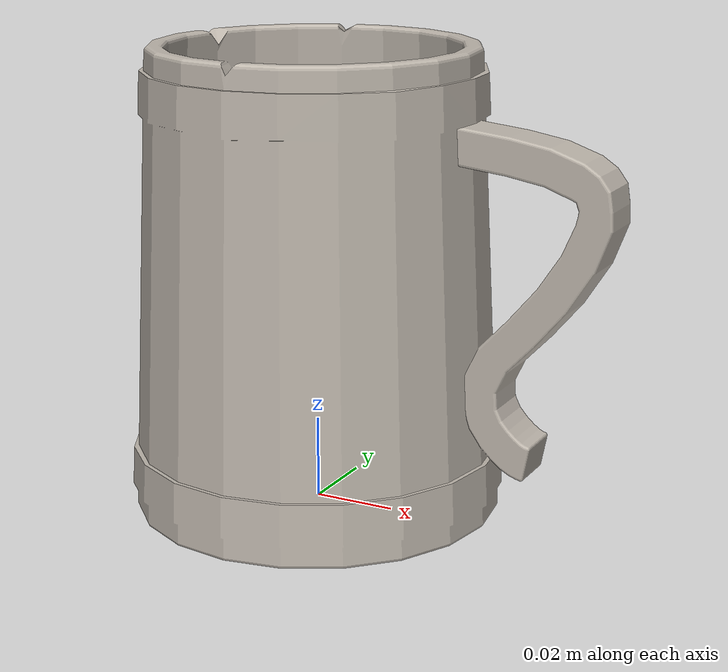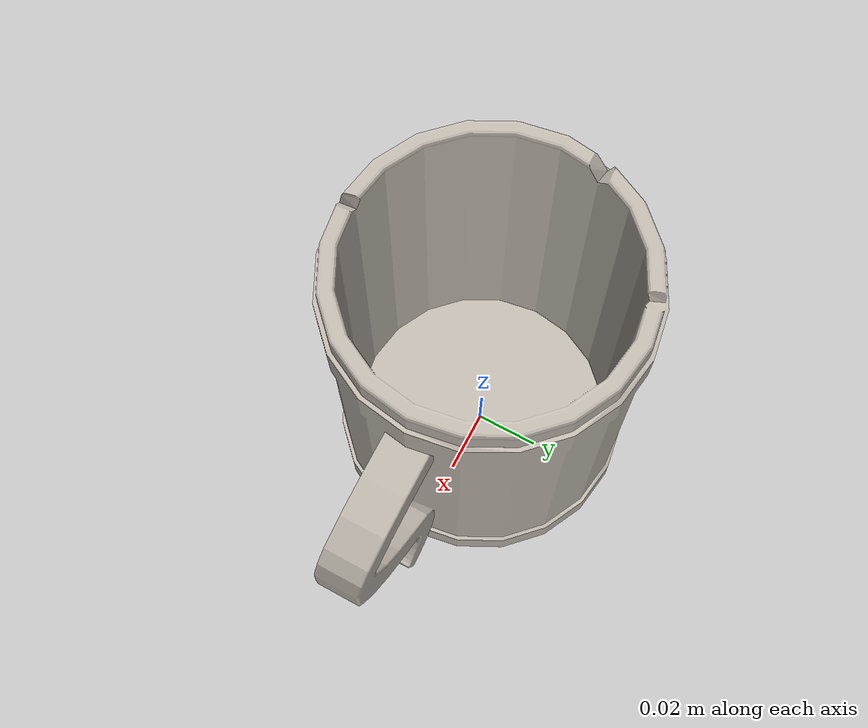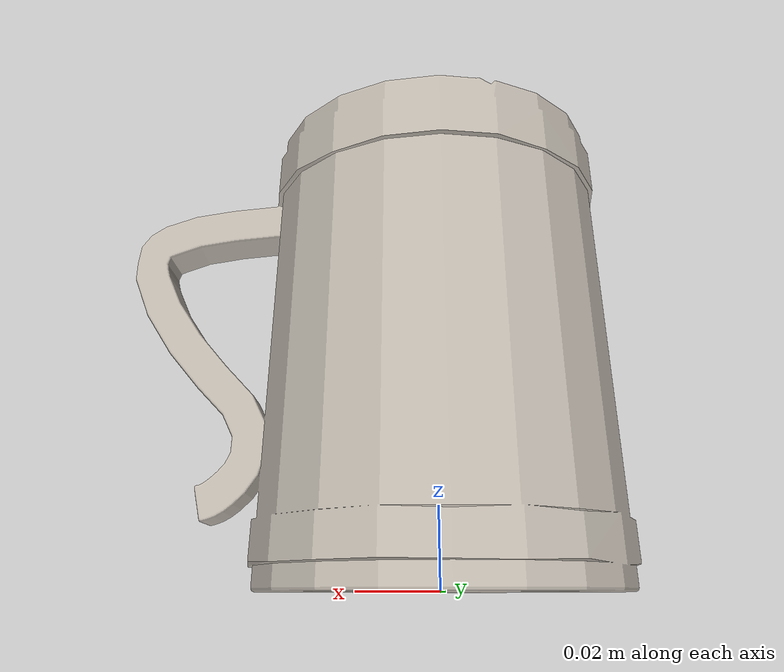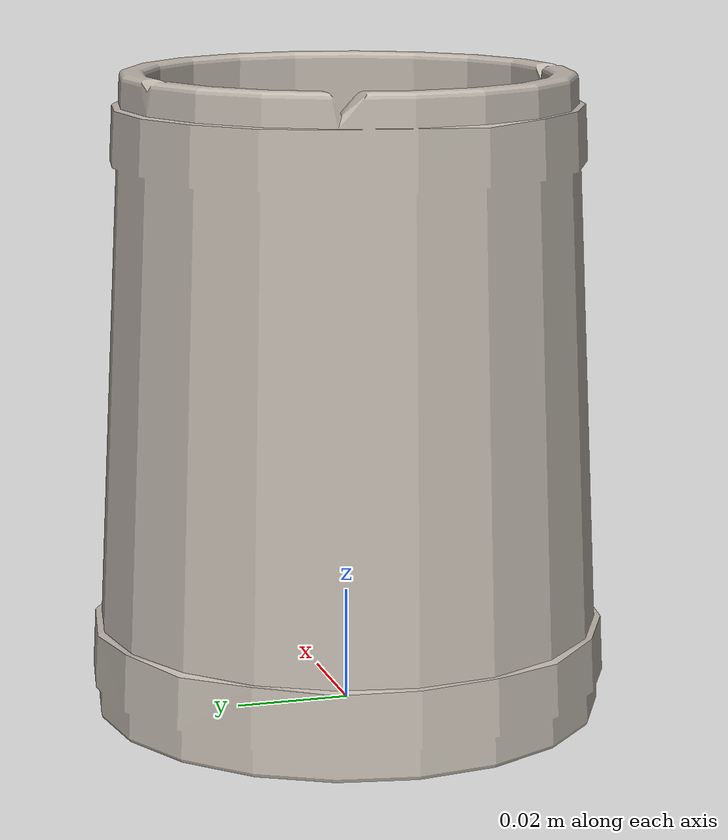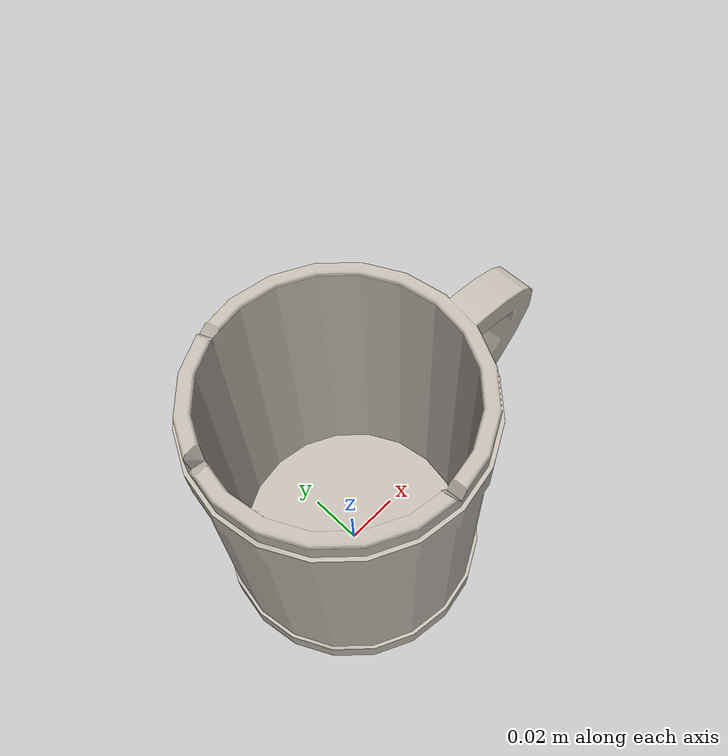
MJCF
<mujoco model="mug">
  <asset>
    <mesh file="meshes/mug_3.obj" name="mug_mesh" scale="0.6 0.6 0.6"/>
    <texture type="2d" file="../textures/Mug_3.png" name="tex-ceramic"/>
    <material name="ceramic" reflectance="0.3" texrepeat="3 3" texture="tex-ceramic" texuniform="true"/>
  </asset>
  <worldbody>
    <body>
      <body name="object">
        <geom pos="0 0 0" mesh="mug_mesh" type="mesh" solimp="0.998 0.998 0.001" solref="0.001 1" density="100" friction="0.95 0.3 0.1" material="ceramic" contype="0" conaffinity="0" group="1"/>
        <geom pos="0 0 0" mesh="mug_mesh" type="mesh" solimp="0.998 0.998 0.001" solref="0.001 1" density="100" friction="0.95 0.3 0.1" material="ceramic" group="0"/>
      </body>
      <site rgba="0 0 0 0" size="0.005" pos="0 0 0" name="bottom_site"/>
      <site rgba="0 0 0 0" size="0.005" pos="0 0.00 0.100" name="top_site"/>
      <site rgba="0 0 0 0" size="0.005" pos="0.06 0.06 0" name="horizontal_radius_site"/>
    </body>
  </worldbody>
</mujoco>
